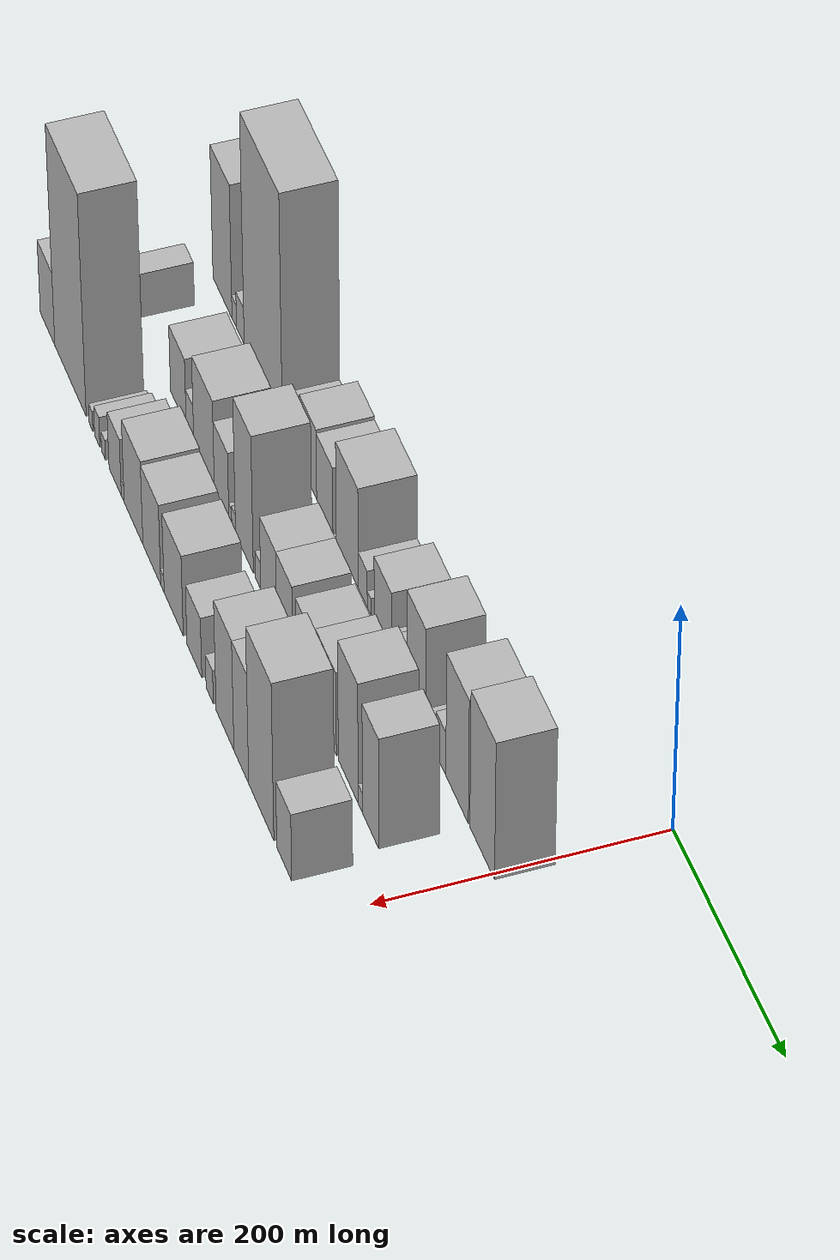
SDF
<sdf version="1.6">
 <world name="default">
  <model name="building_1">
   <static>1</static>
   <pose>100.0000 -554.9852 0 0.000000 0.000000 0.000000</pose>
   <link name="link">
    <pose>0 0 60.00 0 0 0</pose>
    <collision name="collision"><geometry><box><size>40.0000 42.0296 120.0000</size></box></geometry></collision>
    <visual name="visual">
     <cast_shadows>0</cast_shadows>
     <geometry><box><size>40.0000 42.0296 120.0000</size></box></geometry>
     <material>
      <script>
       <uri>model://HANNAS_wall/materials/scripts</uri>
       <uri>model://HANNAS_wall/materials/textures</uri>
       <name>vrc/HANNAS_wall</name>
      </script>
     </material>
    </visual>
   </link>
  </model>
  <model name="building_2">
   <static>1</static>
   <pose>100.0000 -529.0086 0 0.000000 0.000000 0.000000</pose>
   <link name="link">
    <pose>0 0 10.50 0 0 0</pose>
    <collision name="collision"><geometry><box><size>40.0000 9.9237 21.0000</size></box></geometry></collision>
    <visual name="visual">
     <cast_shadows>0</cast_shadows>
     <geometry><box><size>40.0000 9.9237 21.0000</size></box></geometry>
     <material>
      <script>
       <uri>model://HANNAS_wall/materials/scripts</uri>
       <uri>model://HANNAS_wall/materials/textures</uri>
       <name>vrc/HANNAS_wall</name>
      </script>
     </material>
    </visual>
   </link>
  </model>
  <model name="building_3">
   <static>1</static>
   <pose>100.0000 -515.6214 0 0.000000 0.000000 0.000000</pose>
   <link name="link">
    <pose>0 0 16.50 0 0 0</pose>
    <collision name="collision"><geometry><box><size>40.0000 16.8506 33.0000</size></box></geometry></collision>
    <visual name="visual">
     <cast_shadows>0</cast_shadows>
     <geometry><box><size>40.0000 16.8506 33.0000</size></box></geometry>
     <material>
      <script>
       <uri>model://HANNAS_wall/materials/scripts</uri>
       <uri>model://HANNAS_wall/materials/textures</uri>
       <name>vrc/HANNAS_wall</name>
      </script>
     </material>
    </visual>
   </link>
  </model>
  <model name="building_4">
   <static>1</static>
   <pose>100.0000 -465.8172 0 0.000000 0.000000 0.000000</pose>
   <link name="link">
    <pose>0 0 103.50 0 0 0</pose>
    <collision name="collision"><geometry><box><size>40.0000 82.7579 207.0000</size></box></geometry></collision>
    <visual name="visual">
     <cast_shadows>0</cast_shadows>
     <geometry><box><size>40.0000 82.7579 207.0000</size></box></geometry>
     <material>
      <script>
       <uri>model://HANNAS_wall/materials/scripts</uri>
       <uri>model://HANNAS_wall/materials/textures</uri>
       <name>vrc/HANNAS_wall</name>
      </script>
     </material>
    </visual>
   </link>
  </model>
  <model name="building_5">
   <static>1</static>
   <pose>100.0000 -416.1918 0 0.000000 0.000000 0.000000</pose>
   <link name="link">
    <pose>0 0 15.00 0 0 0</pose>
    <collision name="collision"><geometry><box><size>40.0000 16.4930 30.0000</size></box></geometry></collision>
    <visual name="visual">
     <cast_shadows>0</cast_shadows>
     <geometry><box><size>40.0000 16.4930 30.0000</size></box></geometry>
     <material>
      <script>
       <uri>model://HANNAS_wall/materials/scripts</uri>
       <uri>model://HANNAS_wall/materials/textures</uri>
       <name>vrc/HANNAS_wall</name>
      </script>
     </material>
    </visual>
   </link>
  </model>
  <model name="building_6">
   <static>1</static>
   <pose>100.0000 -399.7806 0 0.000000 0.000000 0.000000</pose>
   <link name="link">
    <pose>0 0 7.50 0 0 0</pose>
    <collision name="collision"><geometry><box><size>40.0000 6.3295 15.0000</size></box></geometry></collision>
    <visual name="visual">
     <cast_shadows>0</cast_shadows>
     <geometry><box><size>40.0000 6.3295 15.0000</size></box></geometry>
     <material>
      <script>
       <uri>model://HANNAS_wall/materials/scripts</uri>
       <uri>model://HANNAS_wall/materials/textures</uri>
       <name>vrc/HANNAS_wall</name>
      </script>
     </material>
    </visual>
   </link>
  </model>
  <model name="building_7">
   <static>1</static>
   <pose>100.0000 -369.1393 0 0.000000 0.000000 0.000000</pose>
   <link name="link">
    <pose>0 0 31.50 0 0 0</pose>
    <collision name="collision"><geometry><box><size>40.0000 34.9530 63.0000</size></box></geometry></collision>
    <visual name="visual">
     <cast_shadows>0</cast_shadows>
     <geometry><box><size>40.0000 34.9530 63.0000</size></box></geometry>
     <material>
      <script>
       <uri>model://HANNAS_wall/materials/scripts</uri>
       <uri>model://HANNAS_wall/materials/textures</uri>
       <name>vrc/HANNAS_wall</name>
      </script>
     </material>
    </visual>
   </link>
  </model>
  <model name="building_8">
   <static>1</static>
   <pose>100.0000 -334.6570 0 0.000000 0.000000 0.000000</pose>
   <link name="link">
    <pose>0 0 30.00 0 0 0</pose>
    <collision name="collision"><geometry><box><size>40.0000 34.0115 60.0000</size></box></geometry></collision>
    <visual name="visual">
     <cast_shadows>0</cast_shadows>
     <geometry><box><size>40.0000 34.0115 60.0000</size></box></geometry>
     <material>
      <script>
       <uri>model://HANNAS_wall/materials/scripts</uri>
       <uri>model://HANNAS_wall/materials/textures</uri>
       <name>vrc/HANNAS_wall</name>
      </script>
     </material>
    </visual>
   </link>
  </model>
  <model name="building_9">
   <static>1</static>
   <pose>100.0000 -287.8549 0 0.000000 0.000000 0.000000</pose>
   <link name="link">
    <pose>0 0 45.00 0 0 0</pose>
    <collision name="collision"><geometry><box><size>40.0000 45.5928 90.0000</size></box></geometry></collision>
    <visual name="visual">
     <cast_shadows>0</cast_shadows>
     <geometry><box><size>40.0000 45.5928 90.0000</size></box></geometry>
     <material>
      <script>
       <uri>model://HANNAS_wall/materials/scripts</uri>
       <uri>model://HANNAS_wall/materials/textures</uri>
       <name>vrc/HANNAS_wall</name>
      </script>
     </material>
    </visual>
   </link>
  </model>
  <model name="building_10">
   <static>1</static>
   <pose>100.0000 -255.9240 0 0.000000 0.000000 0.000000</pose>
   <link name="link">
    <pose>0 0 16.50 0 0 0</pose>
    <collision name="collision"><geometry><box><size>40.0000 18.2690 33.0000</size></box></geometry></collision>
    <visual name="visual">
     <cast_shadows>0</cast_shadows>
     <geometry><box><size>40.0000 18.2690 33.0000</size></box></geometry>
     <material>
      <script>
       <uri>model://HANNAS_wall/materials/scripts</uri>
       <uri>model://HANNAS_wall/materials/textures</uri>
       <name>vrc/HANNAS_wall</name>
      </script>
     </material>
    </visual>
   </link>
  </model>
  <model name="building_11">
   <static>1</static>
   <pose>100.0000 -243.1332 0 0.000000 0.000000 0.000000</pose>
   <link name="link">
    <pose>0 0 7.50 0 0 0</pose>
    <collision name="collision"><geometry><box><size>40.0000 7.3125 15.0000</size></box></geometry></collision>
    <visual name="visual">
     <cast_shadows>0</cast_shadows>
     <geometry><box><size>40.0000 7.3125 15.0000</size></box></geometry>
     <material>
      <script>
       <uri>model://HANNAS_wall/materials/scripts</uri>
       <uri>model://HANNAS_wall/materials/textures</uri>
       <name>vrc/HANNAS_wall</name>
      </script>
     </material>
    </visual>
   </link>
  </model>
  <model name="building_12">
   <static>1</static>
   <pose>100.0000 -215.0559 0 0.000000 0.000000 0.000000</pose>
   <link name="link">
    <pose>0 0 30.00 0 0 0</pose>
    <collision name="collision"><geometry><box><size>40.0000 34.8422 60.0000</size></box></geometry></collision>
    <visual name="visual">
     <cast_shadows>0</cast_shadows>
     <geometry><box><size>40.0000 34.8422 60.0000</size></box></geometry>
     <material>
      <script>
       <uri>model://HANNAS_wall/materials/scripts</uri>
       <uri>model://HANNAS_wall/materials/textures</uri>
       <name>vrc/HANNAS_wall</name>
      </script>
     </material>
    </visual>
   </link>
  </model>
  <model name="building_13">
   <static>1</static>
   <pose>100.0000 -191.3355 0 0.000000 0.000000 0.000000</pose>
   <link name="link">
    <pose>0 0 13.50 0 0 0</pose>
    <collision name="collision"><geometry><box><size>40.0000 12.5986 27.0000</size></box></geometry></collision>
    <visual name="visual">
     <cast_shadows>0</cast_shadows>
     <geometry><box><size>40.0000 12.5986 27.0000</size></box></geometry>
     <material>
      <script>
       <uri>model://HANNAS_wall/materials/scripts</uri>
       <uri>model://HANNAS_wall/materials/textures</uri>
       <name>vrc/HANNAS_wall</name>
      </script>
     </material>
    </visual>
   </link>
  </model>
  <model name="building_14">
   <static>1</static>
   <pose>100.0000 -175.7309 0 0.000000 0.000000 0.000000</pose>
   <link name="link">
    <pose>0 0 18.00 0 0 0</pose>
    <collision name="collision"><geometry><box><size>40.0000 18.6107 36.0000</size></box></geometry></collision>
    <visual name="visual">
     <cast_shadows>0</cast_shadows>
     <geometry><box><size>40.0000 18.6107 36.0000</size></box></geometry>
     <material>
      <script>
       <uri>model://HANNAS_wall/materials/scripts</uri>
       <uri>model://HANNAS_wall/materials/textures</uri>
       <name>vrc/HANNAS_wall</name>
      </script>
     </material>
    </visual>
   </link>
  </model>
  <model name="building_15">
   <static>1</static>
   <pose>100.0000 -148.0607 0 0.000000 0.000000 0.000000</pose>
   <link name="link">
    <pose>0 0 46.50 0 0 0</pose>
    <collision name="collision"><geometry><box><size>40.0000 36.7295 93.0000</size></box></geometry></collision>
    <visual name="visual">
     <cast_shadows>0</cast_shadows>
     <geometry><box><size>40.0000 36.7295 93.0000</size></box></geometry>
     <material>
      <script>
       <uri>model://HANNAS_wall/materials/scripts</uri>
       <uri>model://HANNAS_wall/materials/textures</uri>
       <name>vrc/HANNAS_wall</name>
      </script>
     </material>
    </visual>
   </link>
  </model>
  <model name="building_16">
   <static>1</static>
   <pose>100.0000 -124.4940 0 0.000000 0.000000 0.000000</pose>
   <link name="link">
    <pose>0 0 10.50 0 0 0</pose>
    <collision name="collision"><geometry><box><size>40.0000 10.4040 21.0000</size></box></geometry></collision>
    <visual name="visual">
     <cast_shadows>0</cast_shadows>
     <geometry><box><size>40.0000 10.4040 21.0000</size></box></geometry>
     <material>
      <script>
       <uri>model://HANNAS_wall/materials/scripts</uri>
       <uri>model://HANNAS_wall/materials/textures</uri>
       <name>vrc/HANNAS_wall</name>
      </script>
     </material>
    </visual>
   </link>
  </model>
  <model name="building_17">
   <static>1</static>
   <pose>100.0000 -99.4049 0 0.000000 0.000000 0.000000</pose>
   <link name="link">
    <pose>0 0 19.50 0 0 0</pose>
    <collision name="collision"><geometry><box><size>40.0000 19.7743 39.0000</size></box></geometry></collision>
    <visual name="visual">
     <cast_shadows>0</cast_shadows>
     <geometry><box><size>40.0000 19.7743 39.0000</size></box></geometry>
     <material>
      <script>
       <uri>model://HANNAS_wall/materials/scripts</uri>
       <uri>model://HANNAS_wall/materials/textures</uri>
       <name>vrc/HANNAS_wall</name>
      </script>
     </material>
    </visual>
   </link>
  </model>
  <model name="building_18">
   <static>1</static>
   <pose>100.0000 -67.6563 0 0.000000 0.000000 0.000000</pose>
   <link name="link">
    <pose>0 0 55.50 0 0 0</pose>
    <collision name="collision"><geometry><box><size>40.0000 43.7229 111.0000</size></box></geometry></collision>
    <visual name="visual">
     <cast_shadows>0</cast_shadows>
     <geometry><box><size>40.0000 43.7229 111.0000</size></box></geometry>
     <material>
      <script>
       <uri>model://HANNAS_wall/materials/scripts</uri>
       <uri>model://HANNAS_wall/materials/textures</uri>
       <name>vrc/HANNAS_wall</name>
      </script>
     </material>
    </visual>
   </link>
  </model>
  <model name="building_19">
   <static>1</static>
   <pose>100.0000 -19.1620 0 0.000000 0.000000 0.000000</pose>
   <link name="link">
    <pose>0 0 61.50 0 0 0</pose>
    <collision name="collision"><geometry><box><size>40.0000 47.2656 123.0000</size></box></geometry></collision>
    <visual name="visual">
     <cast_shadows>0</cast_shadows>
     <geometry><box><size>40.0000 47.2656 123.0000</size></box></geometry>
     <material>
      <script>
       <uri>model://HANNAS_wall/materials/scripts</uri>
       <uri>model://HANNAS_wall/materials/textures</uri>
       <name>vrc/HANNAS_wall</name>
      </script>
     </material>
    </visual>
   </link>
  </model>
  <model name="building_36">
   <static>1</static>
   <pose>160.0000 -564.1067 0 0.000000 0.000000 0.000000</pose>
   <link name="link">
    <pose>0 0 19.50 0 0 0</pose>
    <collision name="collision"><geometry><box><size>40.0000 19.7865 39.0000</size></box></geometry></collision>
    <visual name="visual">
     <cast_shadows>0</cast_shadows>
     <geometry><box><size>40.0000 19.7865 39.0000</size></box></geometry>
     <material>
      <script>
       <uri>model://HANNAS_wall/materials/scripts</uri>
       <uri>model://HANNAS_wall/materials/textures</uri>
       <name>vrc/HANNAS_wall</name>
      </script>
     </material>
    </visual>
   </link>
  </model>
  <model name="building_37">
   <static>1</static>
   <pose>160.0000 -462.3433 0 0.000000 0.000000 0.000000</pose>
   <link name="link">
    <pose>0 0 30.00 0 0 0</pose>
    <collision name="collision"><geometry><box><size>40.0000 34.5801 60.0000</size></box></geometry></collision>
    <visual name="visual">
     <cast_shadows>0</cast_shadows>
     <geometry><box><size>40.0000 34.5801 60.0000</size></box></geometry>
     <material>
      <script>
       <uri>model://HANNAS_wall/materials/scripts</uri>
       <uri>model://HANNAS_wall/materials/textures</uri>
       <name>vrc/HANNAS_wall</name>
      </script>
     </material>
    </visual>
   </link>
  </model>
  <model name="building_38">
   <static>1</static>
   <pose>160.0000 -436.7394 0 0.000000 0.000000 0.000000</pose>
   <link name="link">
    <pose>0 0 16.50 0 0 0</pose>
    <collision name="collision"><geometry><box><size>40.0000 16.6276 33.0000</size></box></geometry></collision>
    <visual name="visual">
     <cast_shadows>0</cast_shadows>
     <geometry><box><size>40.0000 16.6276 33.0000</size></box></geometry>
     <material>
      <script>
       <uri>model://HANNAS_wall/materials/scripts</uri>
       <uri>model://HANNAS_wall/materials/textures</uri>
       <name>vrc/HANNAS_wall</name>
      </script>
     </material>
    </visual>
   </link>
  </model>
  <model name="building_39">
   <static>1</static>
   <pose>160.0000 -405.9853 0 0.000000 0.000000 0.000000</pose>
   <link name="link">
    <pose>0 0 39.00 0 0 0</pose>
    <collision name="collision"><geometry><box><size>40.0000 44.8807 78.0000</size></box></geometry></collision>
    <visual name="visual">
     <cast_shadows>0</cast_shadows>
     <geometry><box><size>40.0000 44.8807 78.0000</size></box></geometry>
     <material>
      <script>
       <uri>model://HANNAS_wall/materials/scripts</uri>
       <uri>model://HANNAS_wall/materials/textures</uri>
       <name>vrc/HANNAS_wall</name>
      </script>
     </material>
    </visual>
   </link>
  </model>
  <model name="building_40">
   <static>1</static>
   <pose>160.0000 -367.8634 0 0.000000 0.000000 0.000000</pose>
   <link name="link">
    <pose>0 0 30.00 0 0 0</pose>
    <collision name="collision"><geometry><box><size>40.0000 31.3629 60.0000</size></box></geometry></collision>
    <visual name="visual">
     <cast_shadows>0</cast_shadows>
     <geometry><box><size>40.0000 31.3629 60.0000</size></box></geometry>
     <material>
      <script>
       <uri>model://HANNAS_wall/materials/scripts</uri>
       <uri>model://HANNAS_wall/materials/textures</uri>
       <name>vrc/HANNAS_wall</name>
      </script>
     </material>
    </visual>
   </link>
  </model>
  <model name="building_41">
   <static>1</static>
   <pose>160.0000 -349.0872 0 0.000000 0.000000 0.000000</pose>
   <link name="link">
    <pose>0 0 7.50 0 0 0</pose>
    <collision name="collision"><geometry><box><size>40.0000 6.1896 15.0000</size></box></geometry></collision>
    <visual name="visual">
     <cast_shadows>0</cast_shadows>
     <geometry><box><size>40.0000 6.1896 15.0000</size></box></geometry>
     <material>
      <script>
       <uri>model://HANNAS_wall/materials/scripts</uri>
       <uri>model://HANNAS_wall/materials/textures</uri>
       <name>vrc/HANNAS_wall</name>
      </script>
     </material>
    </visual>
   </link>
  </model>
  <model name="building_42">
   <static>1</static>
   <pose>160.0000 -341.9217 0 0.000000 0.000000 0.000000</pose>
   <link name="link">
    <pose>0 0 9.00 0 0 0</pose>
    <collision name="collision"><geometry><box><size>40.0000 8.1414 18.0000</size></box></geometry></collision>
    <visual name="visual">
     <cast_shadows>0</cast_shadows>
     <geometry><box><size>40.0000 8.1414 18.0000</size></box></geometry>
     <material>
      <script>
       <uri>model://HANNAS_wall/materials/scripts</uri>
       <uri>model://HANNAS_wall/materials/textures</uri>
       <name>vrc/HANNAS_wall</name>
      </script>
     </material>
    </visual>
   </link>
  </model>
  <model name="building_43">
   <static>1</static>
   <pose>160.0000 -318.8556 0 0.000000 0.000000 0.000000</pose>
   <link name="link">
    <pose>0 0 61.50 0 0 0</pose>
    <collision name="collision"><geometry><box><size>40.0000 37.9908 123.0000</size></box></geometry></collision>
    <visual name="visual">
     <cast_shadows>0</cast_shadows>
     <geometry><box><size>40.0000 37.9908 123.0000</size></box></geometry>
     <material>
      <script>
       <uri>model://HANNAS_wall/materials/scripts</uri>
       <uri>model://HANNAS_wall/materials/textures</uri>
       <name>vrc/HANNAS_wall</name>
      </script>
     </material>
    </visual>
   </link>
  </model>
  <model name="building_44">
   <static>1</static>
   <pose>160.0000 -290.0937 0 0.000000 0.000000 0.000000</pose>
   <link name="link">
    <pose>0 0 12.00 0 0 0</pose>
    <collision name="collision"><geometry><box><size>40.0000 11.5330 24.0000</size></box></geometry></collision>
    <visual name="visual">
     <cast_shadows>0</cast_shadows>
     <geometry><box><size>40.0000 11.5330 24.0000</size></box></geometry>
     <material>
      <script>
       <uri>model://HANNAS_wall/materials/scripts</uri>
       <uri>model://HANNAS_wall/materials/textures</uri>
       <name>vrc/HANNAS_wall</name>
      </script>
     </material>
    </visual>
   </link>
  </model>
  <model name="building_45">
   <static>1</static>
   <pose>160.0000 -267.5681 0 0.000000 0.000000 0.000000</pose>
   <link name="link">
    <pose>0 0 33.00 0 0 0</pose>
    <collision name="collision"><geometry><box><size>40.0000 33.5183 66.0000</size></box></geometry></collision>
    <visual name="visual">
     <cast_shadows>0</cast_shadows>
     <geometry><box><size>40.0000 33.5183 66.0000</size></box></geometry>
     <material>
      <script>
       <uri>model://HANNAS_wall/materials/scripts</uri>
       <uri>model://HANNAS_wall/materials/textures</uri>
       <name>vrc/HANNAS_wall</name>
      </script>
     </material>
    </visual>
   </link>
  </model>
  <model name="building_46">
   <static>1</static>
   <pose>160.0000 -234.0867 0 0.000000 0.000000 0.000000</pose>
   <link name="link">
    <pose>0 0 33.00 0 0 0</pose>
    <collision name="collision"><geometry><box><size>40.0000 33.4445 66.0000</size></box></geometry></collision>
    <visual name="visual">
     <cast_shadows>0</cast_shadows>
     <geometry><box><size>40.0000 33.4445 66.0000</size></box></geometry>
     <material>
      <script>
       <uri>model://HANNAS_wall/materials/scripts</uri>
       <uri>model://HANNAS_wall/materials/textures</uri>
       <name>vrc/HANNAS_wall</name>
      </script>
     </material>
    </visual>
   </link>
  </model>
  <model name="building_47">
   <static>1</static>
   <pose>160.0000 -192.1216 0 0.000000 0.000000 0.000000</pose>
   <link name="link">
    <pose>0 0 31.50 0 0 0</pose>
    <collision name="collision"><geometry><box><size>40.0000 36.4857 63.0000</size></box></geometry></collision>
    <visual name="visual">
     <cast_shadows>0</cast_shadows>
     <geometry><box><size>40.0000 36.4857 63.0000</size></box></geometry>
     <material>
      <script>
       <uri>model://HANNAS_wall/materials/scripts</uri>
       <uri>model://HANNAS_wall/materials/textures</uri>
       <name>vrc/HANNAS_wall</name>
      </script>
     </material>
    </visual>
   </link>
  </model>
  <model name="building_48">
   <static>1</static>
   <pose>160.0000 -148.4289 0 0.000000 0.000000 0.000000</pose>
   <link name="link">
    <pose>0 0 37.50 0 0 0</pose>
    <collision name="collision"><geometry><box><size>40.0000 40.8998 75.0000</size></box></geometry></collision>
    <visual name="visual">
     <cast_shadows>0</cast_shadows>
     <geometry><box><size>40.0000 40.8998 75.0000</size></box></geometry>
     <material>
      <script>
       <uri>model://HANNAS_wall/materials/scripts</uri>
       <uri>model://HANNAS_wall/materials/textures</uri>
       <name>vrc/HANNAS_wall</name>
      </script>
     </material>
    </visual>
   </link>
  </model>
  <model name="building_49">
   <static>1</static>
   <pose>160.0000 -104.0006 0 0.000000 0.000000 0.000000</pose>
   <link name="link">
    <pose>0 0 54.00 0 0 0</pose>
    <collision name="collision"><geometry><box><size>40.0000 39.9567 108.0000</size></box></geometry></collision>
    <visual name="visual">
     <cast_shadows>0</cast_shadows>
     <geometry><box><size>40.0000 39.9567 108.0000</size></box></geometry>
     <material>
      <script>
       <uri>model://HANNAS_wall/materials/scripts</uri>
       <uri>model://HANNAS_wall/materials/textures</uri>
       <name>vrc/HANNAS_wall</name>
      </script>
     </material>
    </visual>
   </link>
  </model>
  <model name="building_50">
   <static>1</static>
   <pose>160.0000 -79.7294 0 0.000000 0.000000 0.000000</pose>
   <link name="link">
    <pose>0 0 9.00 0 0 0</pose>
    <collision name="collision"><geometry><box><size>40.0000 8.5855 18.0000</size></box></geometry></collision>
    <visual name="visual">
     <cast_shadows>0</cast_shadows>
     <geometry><box><size>40.0000 8.5855 18.0000</size></box></geometry>
     <material>
      <script>
       <uri>model://HANNAS_wall/materials/scripts</uri>
       <uri>model://HANNAS_wall/materials/textures</uri>
       <name>vrc/HANNAS_wall</name>
      </script>
     </material>
    </visual>
   </link>
  </model>
  <model name="building_51">
   <static>1</static>
   <pose>160.0000 -59.3653 0 0.000000 0.000000 0.000000</pose>
   <link name="link">
    <pose>0 0 49.50 0 0 0</pose>
    <collision name="collision"><geometry><box><size>40.0000 32.1428 99.0000</size></box></geometry></collision>
    <visual name="visual">
     <cast_shadows>0</cast_shadows>
     <geometry><box><size>40.0000 32.1428 99.0000</size></box></geometry>
     <material>
      <script>
       <uri>model://HANNAS_wall/materials/scripts</uri>
       <uri>model://HANNAS_wall/materials/textures</uri>
       <name>vrc/HANNAS_wall</name>
      </script>
     </material>
    </visual>
   </link>
  </model>
  <model name="building_67">
   <static>1</static>
   <pose>220.0000 -563.0997 0 0.000000 0.000000 0.000000</pose>
   <link name="link">
    <pose>0 0 33.00 0 0 0</pose>
    <collision name="collision"><geometry><box><size>40.0000 33.8005 66.0000</size></box></geometry></collision>
    <visual name="visual">
     <cast_shadows>0</cast_shadows>
     <geometry><box><size>40.0000 33.8005 66.0000</size></box></geometry>
     <material>
      <script>
       <uri>model://HANNAS_wall/materials/scripts</uri>
       <uri>model://HANNAS_wall/materials/textures</uri>
       <name>vrc/HANNAS_wall</name>
      </script>
     </material>
    </visual>
   </link>
  </model>
  <model name="building_68">
   <static>1</static>
   <pose>220.0000 -510.3545 0 0.000000 0.000000 0.000000</pose>
   <link name="link">
    <pose>0 0 99.00 0 0 0</pose>
    <collision name="collision"><geometry><box><size>40.0000 71.6901 198.0000</size></box></geometry></collision>
    <visual name="visual">
     <cast_shadows>0</cast_shadows>
     <geometry><box><size>40.0000 71.6901 198.0000</size></box></geometry>
     <material>
      <script>
       <uri>model://HANNAS_wall/materials/scripts</uri>
       <uri>model://HANNAS_wall/materials/textures</uri>
       <name>vrc/HANNAS_wall</name>
      </script>
     </material>
    </visual>
   </link>
  </model>
  <model name="building_69">
   <static>1</static>
   <pose>220.0000 -463.3705 0 0.000000 0.000000 0.000000</pose>
   <link name="link">
    <pose>0 0 9.00 0 0 0</pose>
    <collision name="collision"><geometry><box><size>40.0000 8.2778 18.0000</size></box></geometry></collision>
    <visual name="visual">
     <cast_shadows>0</cast_shadows>
     <geometry><box><size>40.0000 8.2778 18.0000</size></box></geometry>
     <material>
      <script>
       <uri>model://HANNAS_wall/materials/scripts</uri>
       <uri>model://HANNAS_wall/materials/textures</uri>
       <name>vrc/HANNAS_wall</name>
      </script>
     </material>
    </visual>
   </link>
  </model>
  <model name="building_70">
   <static>1</static>
   <pose>220.0000 -449.4113 0 0.000000 0.000000 0.000000</pose>
   <link name="link">
    <pose>0 0 13.50 0 0 0</pose>
    <collision name="collision"><geometry><box><size>40.0000 11.6407 27.0000</size></box></geometry></collision>
    <visual name="visual">
     <cast_shadows>0</cast_shadows>
     <geometry><box><size>40.0000 11.6407 27.0000</size></box></geometry>
     <material>
      <script>
       <uri>model://HANNAS_wall/materials/scripts</uri>
       <uri>model://HANNAS_wall/materials/textures</uri>
       <name>vrc/HANNAS_wall</name>
      </script>
     </material>
    </visual>
   </link>
  </model>
  <model name="building_71">
   <static>1</static>
   <pose>220.0000 -435.1914 0 0.000000 0.000000 0.000000</pose>
   <link name="link">
    <pose>0 0 9.00 0 0 0</pose>
    <collision name="collision"><geometry><box><size>40.0000 8.7991 18.0000</size></box></geometry></collision>
    <visual name="visual">
     <cast_shadows>0</cast_shadows>
     <geometry><box><size>40.0000 8.7991 18.0000</size></box></geometry>
     <material>
      <script>
       <uri>model://HANNAS_wall/materials/scripts</uri>
       <uri>model://HANNAS_wall/materials/textures</uri>
       <name>vrc/HANNAS_wall</name>
      </script>
     </material>
    </visual>
   </link>
  </model>
  <model name="building_72">
   <static>1</static>
   <pose>220.0000 -409.1495 0 0.000000 0.000000 0.000000</pose>
   <link name="link">
    <pose>0 0 25.50 0 0 0</pose>
    <collision name="collision"><geometry><box><size>40.0000 27.2848 51.0000</size></box></geometry></collision>
    <visual name="visual">
     <cast_shadows>0</cast_shadows>
     <geometry><box><size>40.0000 27.2848 51.0000</size></box></geometry>
     <material>
      <script>
       <uri>model://HANNAS_wall/materials/scripts</uri>
       <uri>model://HANNAS_wall/materials/textures</uri>
       <name>vrc/HANNAS_wall</name>
      </script>
     </material>
    </visual>
   </link>
  </model>
  <model name="building_73">
   <static>1</static>
   <pose>220.0000 -392.2511 0 0.000000 0.000000 0.000000</pose>
   <link name="link">
    <pose>0 0 7.50 0 0 0</pose>
    <collision name="collision"><geometry><box><size>40.0000 6.5120 15.0000</size></box></geometry></collision>
    <visual name="visual">
     <cast_shadows>0</cast_shadows>
     <geometry><box><size>40.0000 6.5120 15.0000</size></box></geometry>
     <material>
      <script>
       <uri>model://HANNAS_wall/materials/scripts</uri>
       <uri>model://HANNAS_wall/materials/textures</uri>
       <name>vrc/HANNAS_wall</name>
      </script>
     </material>
    </visual>
   </link>
  </model>
  <model name="building_74">
   <static>1</static>
   <pose>220.0000 -368.3071 0 0.000000 0.000000 0.000000</pose>
   <link name="link">
    <pose>0 0 37.50 0 0 0</pose>
    <collision name="collision"><geometry><box><size>40.0000 41.3759 75.0000</size></box></geometry></collision>
    <visual name="visual">
     <cast_shadows>0</cast_shadows>
     <geometry><box><size>40.0000 41.3759 75.0000</size></box></geometry>
     <material>
      <script>
       <uri>model://HANNAS_wall/materials/scripts</uri>
       <uri>model://HANNAS_wall/materials/textures</uri>
       <name>vrc/HANNAS_wall</name>
      </script>
     </material>
    </visual>
   </link>
  </model>
  <model name="building_75">
   <static>1</static>
   <pose>220.0000 -328.1722 0 0.000000 0.000000 0.000000</pose>
   <link name="link">
    <pose>0 0 36.00 0 0 0</pose>
    <collision name="collision"><geometry><box><size>40.0000 38.8939 72.0000</size></box></geometry></collision>
    <visual name="visual">
     <cast_shadows>0</cast_shadows>
     <geometry><box><size>40.0000 38.8939 72.0000</size></box></geometry>
     <material>
      <script>
       <uri>model://HANNAS_wall/materials/scripts</uri>
       <uri>model://HANNAS_wall/materials/textures</uri>
       <name>vrc/HANNAS_wall</name>
      </script>
     </material>
    </visual>
   </link>
  </model>
  <model name="building_76">
   <static>1</static>
   <pose>220.0000 -304.9885 0 0.000000 0.000000 0.000000</pose>
   <link name="link">
    <pose>0 0 7.50 0 0 0</pose>
    <collision name="collision"><geometry><box><size>40.0000 7.4734 15.0000</size></box></geometry></collision>
    <visual name="visual">
     <cast_shadows>0</cast_shadows>
     <geometry><box><size>40.0000 7.4734 15.0000</size></box></geometry>
     <material>
      <script>
       <uri>model://HANNAS_wall/materials/scripts</uri>
       <uri>model://HANNAS_wall/materials/textures</uri>
       <name>vrc/HANNAS_wall</name>
      </script>
     </material>
    </visual>
   </link>
  </model>
  <model name="building_77">
   <static>1</static>
   <pose>220.0000 -280.7100 0 0.000000 0.000000 0.000000</pose>
   <link name="link">
    <pose>0 0 36.00 0 0 0</pose>
    <collision name="collision"><geometry><box><size>40.0000 41.0836 72.0000</size></box></geometry></collision>
    <visual name="visual">
     <cast_shadows>0</cast_shadows>
     <geometry><box><size>40.0000 41.0836 72.0000</size></box></geometry>
     <material>
      <script>
       <uri>model://HANNAS_wall/materials/scripts</uri>
       <uri>model://HANNAS_wall/materials/textures</uri>
       <name>vrc/HANNAS_wall</name>
      </script>
     </material>
    </visual>
   </link>
  </model>
  <model name="building_78">
   <static>1</static>
   <pose>220.0000 -236.3514 0 0.000000 0.000000 0.000000</pose>
   <link name="link">
    <pose>0 0 27.00 0 0 0</pose>
    <collision name="collision"><geometry><box><size>40.0000 31.6335 54.0000</size></box></geometry></collision>
    <visual name="visual">
     <cast_shadows>0</cast_shadows>
     <geometry><box><size>40.0000 31.6335 54.0000</size></box></geometry>
     <material>
      <script>
       <uri>model://HANNAS_wall/materials/scripts</uri>
       <uri>model://HANNAS_wall/materials/textures</uri>
       <name>vrc/HANNAS_wall</name>
      </script>
     </material>
    </visual>
   </link>
  </model>
  <model name="building_79">
   <static>1</static>
   <pose>220.0000 -203.8870 0 0.000000 0.000000 0.000000</pose>
   <link name="link">
    <pose>0 0 15.00 0 0 0</pose>
    <collision name="collision"><geometry><box><size>40.0000 15.2953 30.0000</size></box></geometry></collision>
    <visual name="visual">
     <cast_shadows>0</cast_shadows>
     <geometry><box><size>40.0000 15.2953 30.0000</size></box></geometry>
     <material>
      <script>
       <uri>model://HANNAS_wall/materials/scripts</uri>
       <uri>model://HANNAS_wall/materials/textures</uri>
       <name>vrc/HANNAS_wall</name>
      </script>
     </material>
    </visual>
   </link>
  </model>
  <model name="building_80">
   <static>1</static>
   <pose>220.0000 -171.6319 0 0.000000 0.000000 0.000000</pose>
   <link name="link">
    <pose>0 0 49.50 0 0 0</pose>
    <collision name="collision"><geometry><box><size>40.0000 37.2150 99.0000</size></box></geometry></collision>
    <visual name="visual">
     <cast_shadows>0</cast_shadows>
     <geometry><box><size>40.0000 37.2150 99.0000</size></box></geometry>
     <material>
      <script>
       <uri>model://HANNAS_wall/materials/scripts</uri>
       <uri>model://HANNAS_wall/materials/textures</uri>
       <name>vrc/HANNAS_wall</name>
      </script>
     </material>
    </visual>
   </link>
  </model>
  <model name="building_81">
   <static>1</static>
   <pose>220.0000 -137.6796 0 0.000000 0.000000 0.000000</pose>
   <link name="link">
    <pose>0 0 49.50 0 0 0</pose>
    <collision name="collision"><geometry><box><size>40.0000 30.6896 99.0000</size></box></geometry></collision>
    <visual name="visual">
     <cast_shadows>0</cast_shadows>
     <geometry><box><size>40.0000 30.6896 99.0000</size></box></geometry>
     <material>
      <script>
       <uri>model://HANNAS_wall/materials/scripts</uri>
       <uri>model://HANNAS_wall/materials/textures</uri>
       <name>vrc/HANNAS_wall</name>
      </script>
     </material>
    </visual>
   </link>
  </model>
  <model name="building_82">
   <static>1</static>
   <pose>220.0000 -96.5655 0 0.000000 0.000000 0.000000</pose>
   <link name="link">
    <pose>0 0 70.50 0 0 0</pose>
    <collision name="collision"><geometry><box><size>40.0000 51.5386 141.0000</size></box></geometry></collision>
    <visual name="visual">
     <cast_shadows>0</cast_shadows>
     <geometry><box><size>40.0000 51.5386 141.0000</size></box></geometry>
     <material>
      <script>
       <uri>model://HANNAS_wall/materials/scripts</uri>
       <uri>model://HANNAS_wall/materials/textures</uri>
       <name>vrc/HANNAS_wall</name>
      </script>
     </material>
    </visual>
   </link>
  </model>
  <model name="building_83">
   <static>1</static>
   <pose>220.0000 -49.7364 0 0.000000 0.000000 0.000000</pose>
   <link name="link">
    <pose>0 0 30.00 0 0 0</pose>
    <collision name="collision"><geometry><box><size>40.0000 30.1195 60.0000</size></box></geometry></collision>
    <visual name="visual">
     <cast_shadows>0</cast_shadows>
     <geometry><box><size>40.0000 30.1195 60.0000</size></box></geometry>
     <material>
      <script>
       <uri>model://HANNAS_wall/materials/scripts</uri>
       <uri>model://HANNAS_wall/materials/textures</uri>
       <name>vrc/HANNAS_wall</name>
      </script>
     </material>
    </visual>
   </link>
  </model>
 </world>
</sdf>
